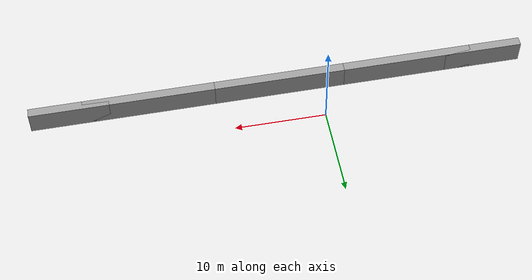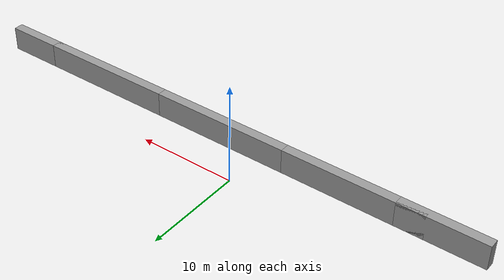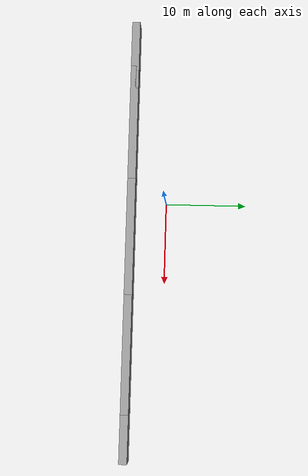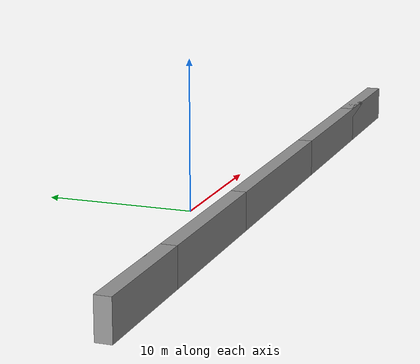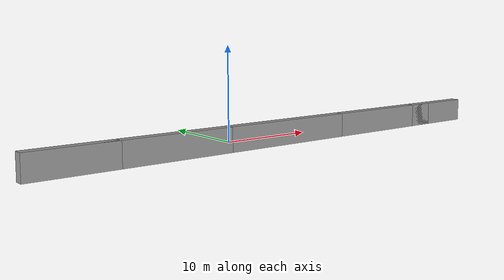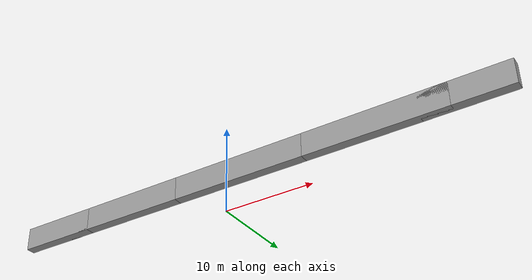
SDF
<?xml version='1.0'?>
<sdf version='1.6'>
  <model name='girder'>
    <pose frame=''>6.27111 -4.30096 0 0 -0 0</pose>
    <link name='Wall_1'>
      <collision name='Wall_1_Collision'>
        <geometry>
          <box>
            <size>8.65 1 2.5</size>
          </box>
        </geometry>
        <pose frame=''>0 0 1.25 0 -0 0</pose>
      </collision>
      <visual name='Wall_1_Visual'>
        <pose frame=''>0 0 1.25 0 -0 0</pose>
        <geometry>
          <box>
            <size>8.65 1 2.5</size>
          </box>
        </geometry>
        <material>
          <script>
            <uri>file://media/materials/scripts/gazebo.material</uri>
            <name>Gazebo/Grey</name>
          </script>
          <ambient>1 1 1 1</ambient>
        </material>
      </visual>
      <pose frame=''>-25 0 0 0 0 0</pose>
    </link>
    <link name='Wall_3'>
      <collision name='Wall_3_Collision'>
        <geometry>
          <box>
            <size>14.4 1 2.5</size>
          </box>
        </geometry>
        <pose frame=''>0 0 1.25 0 -0 0</pose>
      </collision>
      <visual name='Wall_3_Visual'>
        <pose frame=''>0 0 1.25 0 -0 0</pose>
        <geometry>
          <box>
            <size>14.4 1 2.5</size>
          </box>
        </geometry>
        <material>
          <script>
            <uri>file://media/materials/scripts/gazebo.material</uri>
            <name>Gazebo/Grey</name>
          </script>
          <ambient>1 1 1 1</ambient>
        </material>
      </visual>
      <pose frame=''>-16.35 0 0 0 0 0</pose>
    </link>
    <link name='Wall_5'>
      <collision name='Wall_5_Collision'>
        <geometry>
          <box>
            <size>14.4 1 2.5</size>
          </box>
        </geometry>
        <pose frame=''>0 0 1.25 0 -0 0</pose>
      </collision>
      <visual name='Wall_5_Visual'>
        <pose frame=''>0 0 1.25 0 -0 0</pose>
        <geometry>
          <box>
            <size>14.4 1 2.5</size>
          </box>
        </geometry>
        <material>
          <script>
            <uri>file://media/materials/scripts/gazebo.material</uri>
            <name>Gazebo/Grey</name>
          </script>
          <ambient>1 1 1 1</ambient>
        </material>
      </visual>
      <pose frame=''>-1.95 0 0 0 0 0</pose>
    </link>
    <link name='Wall_7'>
      <collision name='Wall_7_Collision'>
        <geometry>
          <box>
            <size>14.4 1 2.5</size>
          </box>
        </geometry>
        <pose frame=''>0 0 1.25 0 -0 0</pose>
      </collision>
      <visual name='Wall_7_Visual'>
        <pose frame=''>0 0 1.25 0 -0 0</pose>
        <geometry>
          <box>
            <size>14.4 1 2.5</size>
          </box>
        </geometry>
        <material>
          <script>
            <uri>file://media/materials/scripts/gazebo.material</uri>
            <name>Gazebo/Grey</name>
          </script>
          <ambient>1 1 1 1</ambient>
        </material>
      </visual>
      <pose frame=''>12.45 0 0 0 0 0</pose>
    </link>
    <link name='Wall_9'>
      <collision name='Wall_9_Collision'>
        <geometry>
          <box>
            <size>8.65 1 2.5</size>
          </box>
        </geometry>
        <pose frame=''>0 0 1.25 0 -0 0</pose>
      </collision>
      <visual name='Wall_9_Visual'>
        <pose frame=''>0 0 1.25 0 -0 0</pose>
        <geometry>
          <box>
            <size>8.65 1 2.5</size>
          </box>
        </geometry>
        <material>
          <script>
            <uri>file://media/materials/scripts/gazebo.material</uri>
            <name>Gazebo/Grey</name>
          </script>
          <ambient>1 1 1 1</ambient>
        </material>
      </visual>
      <pose frame=''>21.1 0 0 0 0 0</pose>
    </link>
    <static>1</static>
  </model>
</sdf>
